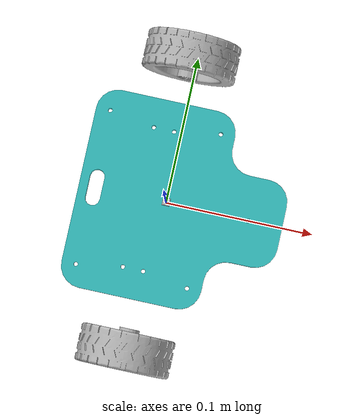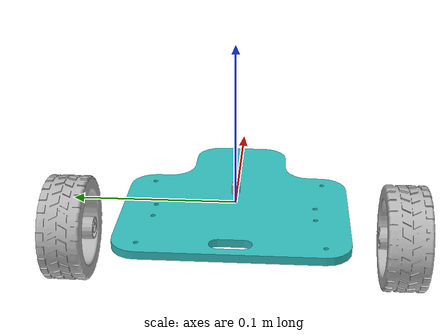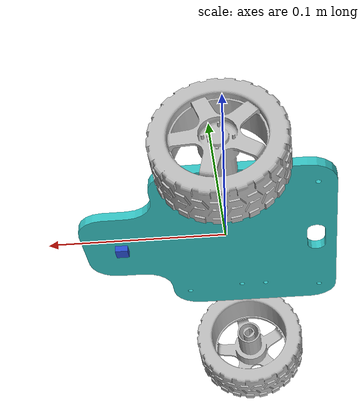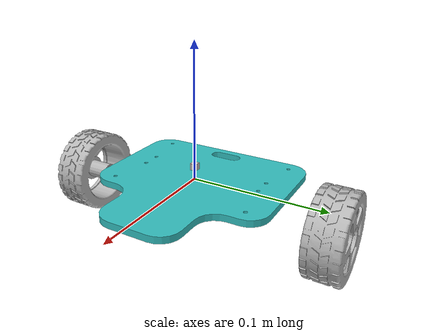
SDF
<sdf version='1.7'>
  <model name='walle'>
    <link name='base_link'>
      <inertial>
        <pose>-0 0 -0.0025 0 -0 0</pose>
        <mass>0.002000</mass>
        <inertia>
          <ixx>0.00013273</ixx>
          <ixy>-1.1266E-19</ixy>
          <ixz>2.7763E-20</ixz>
          <iyy>0.00012815</iyy>
          <iyz>-2.6929E-08</iyz>
          <izz>0.00025465</izz>
        </inertia>
      </inertial>
      <collision name='base_link_collision'>
        <pose>0 0 0 0 -0 0</pose>
        <geometry>
         <mesh>
            <scale>1 1 1</scale>
            <uri>meshes/base_link.STL</uri>
          </mesh>
        </geometry>
      </collision>
      <collision name='base_link_fixed_joint_lump__camera_link_collision_1'>
        <pose>0.058 0 -0.005 1.5708 -1.5708 1.5708</pose>
        <geometry>
          <box>
            <size>0.007 0.007 0.007</size>
          </box>
        </geometry>
        <surface>
          <contact>
            <ode/>
          </contact>
          <friction>
            <ode/>
          </friction>
        </surface>
      </collision>
      <collision name='base_link_fixed_joint_lump__imu_link_collision_2'>
        <pose>0 0 0.01 0 -0 0</pose>
        <geometry>
          <box>
            <size>0.005 0.005 0.005</size>
          </box>
        </geometry>
        <surface>
          <contact>
            <ode/>
          </contact>
          <friction>
            <ode/>
          </friction>
        </surface>
      </collision>
      <visual name='base_link_visual'>
        <pose>0 0 0 0 -0 0</pose>
        <geometry>
          <mesh>
            <scale>1 1 1</scale>
            <uri>meshes/base_link.STL</uri>
          </mesh>
        </geometry>
        <material>
          <script>
            <name>Gazebo/Turquoise</name>
            <uri>file://media/materials/scripts/gazebo.material</uri>
          </script>
        </material>
      </visual>
      <visual name='base_link_fixed_joint_lump__camera_link_visual_1'>
        <pose>0.058 0 -0.005 1.5708 -1.5708 1.5708</pose>
        <geometry>
          <box>
            <size>0.007 0.007 0.007</size>
          </box>
        </geometry>
         <material>
          <script>
            <name>Gazebo/Blue</name>
            <uri>file://media/materials/scripts/gazebo.material</uri>
          </script>
        </material>
      </visual>
      <visual name='base_link_fixed_joint_lump__imu_link_visual_2'>
        <pose>0 0 0.01 0 -0 0</pose>
        <geometry>
          <box>
             <size>0.005 0.005 0.005</size>
          </box>
        </geometry>
      </visual>
      <sensor name='camera1' type='camera'>
        <update_rate>30</update_rate>
        <camera name='head'>
          <horizontal_fov>1.39626</horizontal_fov>
          <image>
            <width>32</width>
            <height>1</height>
            <format>R8G8B8</format>
          </image>
          <clip>
            <near>0.02</near>
            <far>300</far>
          </clip>
          <noise>
            <type>gaussian</type>
            <mean>0</mean>
            <stddev>0.007</stddev>
          </noise>
        </camera>
        <plugin name='camera_controller' filename='libgazebo_ros_camera.so'>
          <alwaysOn>1</alwaysOn>
          <updateRate>0.0</updateRate>
          <cameraName>rrbot/camera1</cameraName>
          <imageTopicName>image_raw</imageTopicName>
          <cameraInfoTopicName>camera_info</cameraInfoTopicName>
          <frameName>camera_link</frameName>
          <hackBaseline>0.07</hackBaseline>
          <distortionK1>0.0</distortionK1>
          <distortionK2>0.0</distortionK2>
          <distortionK3>0.0</distortionK3>
          <distortionT1>0.0</distortionT1>
          <distortionT2>0.0</distortionT2>
        </plugin>
        <pose>0 0 0 0 1.5707 1.5707</pose>
      </sensor>
      <sensor name='imu_sensor' type='imu'>
        <plugin name='imu_plugin' filename='libgazebo_ros_imu_sensor.so'>
          <ros>
            <namespace>/demo</namespace>
            <remapping>~/out:=imu</remapping>
          </ros>
          <initial_orientation_as_reference>0</initial_orientation_as_reference>
        </plugin>
        <always_on>1</always_on>
        <update_rate>100</update_rate>
        <visualize>1</visualize>
        <imu>
          <angular_velocity>
            <x>
              <noise type='gaussian'>
                <mean>0</mean>
                <stddev>0.0002</stddev>
                <bias_mean>7.5e-06</bias_mean>
                <bias_stddev>8e-07</bias_stddev>
              </noise>
            </x>
            <y>
              <noise type='gaussian'>
                <mean>0</mean>
                <stddev>0.0002</stddev>
                <bias_mean>7.5e-06</bias_mean>
                <bias_stddev>8e-07</bias_stddev>
              </noise>
            </y>
            <z>
              <noise type='gaussian'>
                <mean>0</mean>
                <stddev>0.0002</stddev>
                <bias_mean>7.5e-06</bias_mean>
                <bias_stddev>8e-07</bias_stddev>
              </noise>
            </z>
          </angular_velocity>
          <linear_acceleration>
            <x>
              <noise type='gaussian'>
                <mean>0</mean>
                <stddev>0.017</stddev>
                <bias_mean>0.1</bias_mean>
                <bias_stddev>0.001</bias_stddev>
              </noise>
            </x>
            <y>
              <noise type='gaussian'>
                <mean>0</mean>
                <stddev>0.017</stddev>
                <bias_mean>0.1</bias_mean>
                <bias_stddev>0.001</bias_stddev>
              </noise>
            </y>
            <z>
              <noise type='gaussian'>
                <mean>0</mean>
                <stddev>0.017</stddev>
                <bias_mean>0.1</bias_mean>
                <bias_stddev>0.001</bias_stddev>
              </noise>
            </z>
          </linear_acceleration>
        </imu>
        <pose>0 0 0.01 0 -0 0</pose>
      </sensor>
    </link>
    <joint name='leftjoint' type='revolute'>
      <pose relative_to='base_link'>-0.00545 0.10601 -0.017901 0 -0 0</pose>
      <parent>base_link</parent>
      <child>leftlink</child>
      <axis>
        <xyz>0 1 0</xyz>
        <limit>
          <effort>1</effort>
          <velocity>1</velocity>
          <lower>-1e+16</lower>
          <upper>1e+16</upper>
        </limit>
        <dynamics>
          <spring_reference>0</spring_reference>
          <spring_stiffness>0</spring_stiffness>
        </dynamics>
      </axis>
    </joint>
    <link name='leftlink'>
      <pose relative_to='leftjoint'>0 0 0 0 -0 0</pose>
      <inertial>
        <pose>0 -0.01231 0 0 -0 0</pose>
        <mass>0.29734</mass>
        <inertia>
          <ixx>1.2291E-05</ixx>
          <ixy>-6.7734E-11</ixy>
          <ixz>1.7748E-10</ixz>
          <iyy>2.0379E-05</iyy>
          <iyz>5.8879E-11</iyz>
          <izz>1.2291E-05</izz>
        </inertia>
      </inertial>
      <collision name='leftlink_collision'>
        <pose>0 0 0 0 -0 0</pose>
        <geometry>
          <mesh>
            <scale>1 1 1</scale>
            <uri>meshes/leftwheel.STL</uri>
          </mesh>
        </geometry>
      </collision>
      <visual name='leftlink_visual'>
        <pose>0 0 0 0 -0 0</pose>
        <geometry>
          <mesh>
            <scale>1 1 1</scale>
            <uri>meshes/leftwheel.STL</uri>
          </mesh>
        </geometry>
         <material>
          <script>
            <name>Gazebo/LightOn</name>
            <uri>file://media/materials/scripts/gazebo.material</uri>
          </script>
        </material>
      </visual>
    </link>
    <joint name='rightjoint' type='revolute'>
      <pose relative_to='base_link'>-0.006345 -0.10601 -0.017901 0 -0 0</pose>
      <parent>base_link</parent>
      <child>rightlink</child>
      <axis>
        <xyz>0 1 0</xyz>
        <limit>
          <effort>1</effort>
          <velocity>1</velocity>
          <lower>-1e+16</lower>
          <upper>1e+16</upper>
        </limit>
        <dynamics>
          <spring_reference>0</spring_reference>
          <spring_stiffness>0</spring_stiffness>
        </dynamics>
      </axis>
    </joint>
    <link name='rightlink'>
      <pose relative_to='rightjoint'>0 0 0 0 -0 0</pose>
      <inertial>
        <pose>0 0.01231 -0 0 -0 0</pose>
        <mass>0.29734</mass>
        <inertia>
          <ixx>1.2291E-05</ixx>
          <ixy>6.7734E-11</ixy>
          <ixz>-1.7748E-10</ixz>
          <iyy>2.0379E-05</iyy>
          <iyz>5.8879E-11</iyz>
          <izz>1.2291E-05</izz>
        </inertia>
      </inertial>
      <collision name='rightlink_collision'>
        <pose>0 0 0 0 -0 0</pose>
        <geometry>
          <mesh>
            <scale>1 1 1</scale>
            <uri>meshes/rightwheel.STL</uri>
          </mesh>
        </geometry>
      </collision>
      <visual name='rightlink_visual'>
        <pose>0 0 0 0 -0 0</pose>
        <geometry>
          <mesh>
            <scale>1 1 1</scale>
            <uri>meshes/rightwheel.STL</uri>
          </mesh>
        </geometry>
         <material>
          <script>
            <name>Gazebo/LightOn</name>
            <uri>file://media/materials/scripts/gazebo.material</uri>
          </script>
        </material>
      </visual>
    </link>
    <static>0</static>
    <plugin name='diff_drive' filename='libgazebo_ros_diff_drive.so'>
      <ros>
        <namespace>/demo</namespace>
      </ros>
      <left_joint>rightjoint</left_joint>
      <right_joint>leftjoint</right_joint>
      <wheel_separation>0.025</wheel_separation>
      <wheel_diameter>0.2</wheel_diameter>
      <max_wheel_torque>20</max_wheel_torque>
      <max_wheel_acceleration>1.0</max_wheel_acceleration>
      <publish_odom>1</publish_odom>
      <publish_odom_tf>1</publish_odom_tf>
      <publish_wheel_tf>1</publish_wheel_tf>
      <odometry_frame>odom</odometry_frame>
      <robot_base_frame>chassis</robot_base_frame>
    </plugin>
  </model>
</sdf>
